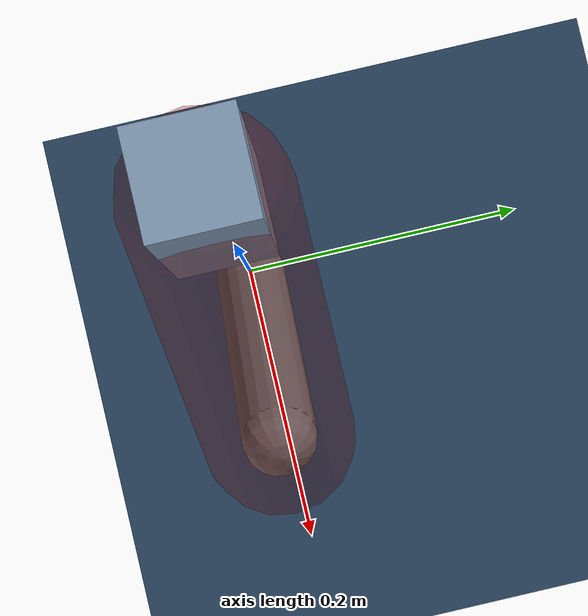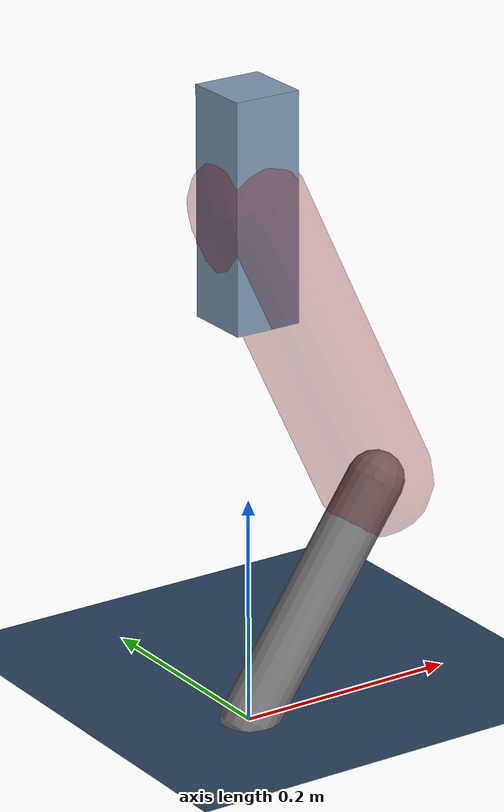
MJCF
<mujoco model="Hopper2D">
	<compiler inertiafromgeom="true" angle="radian" />
	<option timestep="0.001" integrator="implicit" cone="elliptic" solver="Newton" tolerance="1e-10" />

	<default>
		<geom contype="1" conaffinity="1" condim="3" friction="2 0.005 0.0001" solref="0.005 1" />
		<joint limited="true" damping="0.1" />
	</default>

	<asset>
		<texture name="skybox" type="skybox" builtin="gradient" rgb1=".4 .6 .8" rgb2="0 0 0" width="800" height="800" />
		<texture name="grid" type="2d" builtin="checker" rgb1=".1 .2 .3" rgb2=".2 .3 .4" width="300" height="300" mark="edge" markrgb=".2 .3 .4" />
		<material name="ground" texture="grid" texrepeat="1 1" texuniform="true" reflectance="0.1" />
		<material name="leg" rgba="0.5 0.6 0.7 1" />
	</asset>

	<worldbody>

		<geom name="floor" type="plane" size="5 5 0.25" material="ground" />

		<light directional="false" diffuse="0.8 0.8 0.8" specular="0.3 0.3 0.3" pos="0 0 2" dir="0 0 -1" />
		<light mode="targetbodycom" target="base" directional="false" diffuse="0.8 0.8 0.8" specular="0.3 0.3 0.3" pos="0 0 2" dir="0 0 -1" />

		<camera name="fixed" pos="0 -2 1" xyaxes="1 0 0 0 0 1" />
		<camera name="tracking" mode="trackcom" pos="0 -3 1" />

		<body name="root" pos="0 0 0.46111122917956227">
			<joint name="slide_x" type="slide" axis="1 0 0" range="-100 100" />
			<joint name="slide_z" type="slide" axis="0 0 1" range="0 10" />

			<body name="base" pos="0 0 0">
				<geom name="torso" type="box" size="0.03 0.03 0.1" mass="3.766" material="leg" />

				<body name="link1" pos="0 0 0" euler="0 1.124949074374436 0">
					<joint type="hinge" axis="0 -1 0" pos="0 0 0" name="hinge1" limited="true" range="-3.14 3.14" stiffness="0" damping="0.1" />
					<geom name="thigh" type="capsule" fromto="0 0 0 0.30020535313538316 0 0" size="0.05" rgba="0.5 0 0 0.3" mass="0.9892544534655345" />

					<body name="link2" pos="0.30020535313538316 0 0" euler="0 1.0433248849066188 0">
						<joint type="hinge" axis="0 -1 0" pos="0 0 0" name="hinge2" limited="true" range="-3.14 3.14" stiffness="0" damping="0.1" />
						<geom name="shank" type="capsule" fromto="0 0 0 0.23011865425180333 0 0" size="0.025" mass="0.42609492340144267" />

					</body>
				</body>
			</body>
		</body>
	</worldbody>

	<actuator>
		<motor name="torque1" joint="hinge1" ctrlrange="-221.0726467088812 221.0726467088812" ctrllimited="true" gear="1" />
		<motor name="torque2" joint="hinge2" ctrlrange="-66.39574868895012 66.39574868895012" ctrllimited="true" gear="1" />
	</actuator>
</mujoco>
